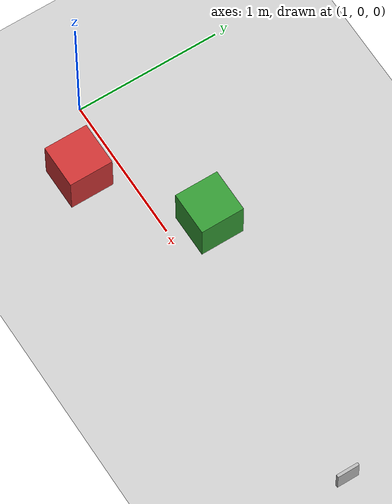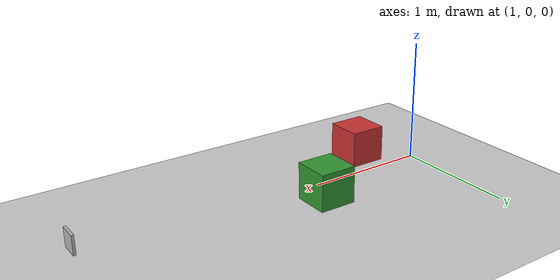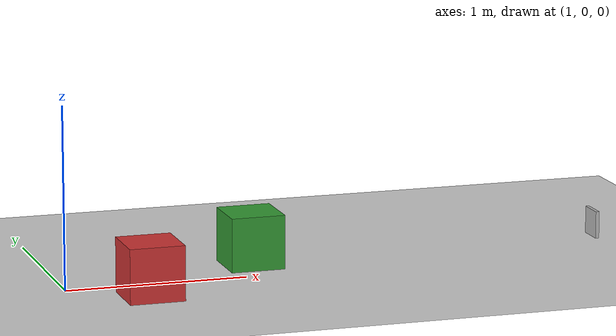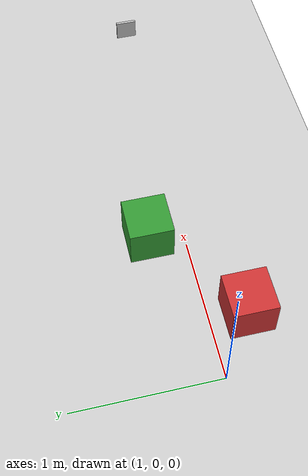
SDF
<?xml version="1.0"?>
<sdf version="1.6">
  <world name="default">

    <include><uri>model://ground_plane</uri></include>
    <include><uri>model://sun</uri></include>

    <!-- First box (red, -0.25): intrudes center-right → avoid left (+y) (staggered slalom 1) -->
    <model name="obstacle_1">
      <static>true</static>
      <pose>1.4 -0.25 0.15 0 0 0</pose>
      <link name="link">
        <collision name="c"><geometry><box><size>0.3 0.3 0.3</size></box></geometry></collision>
        <visual name="v">
          <geometry><box><size>0.3 0.3 0.3</size></box></geometry>
          <material><ambient>0.8 0.2 0.2 1</ambient><diffuse>0.8 0.2 0.2 1</diffuse></material>
        </visual>
      </link>
    </model>

    <model name="obstacle_2">
      <static>true</static>
      <pose>2.1 0.25 0.15 0 0 0</pose>
      <link name="link">
        <collision name="c"><geometry><box><size>0.3 0.3 0.3</size></box></geometry></collision>
        <visual name="v">
          <geometry><box><size>0.3 0.3 0.3</size></box></geometry>
          <material><ambient>0.2 0.6 0.2 1</ambient><diffuse>0.2 0.6 0.2 1</diffuse></material>
        </visual>
      </link>
    </model>

    <!-- Front ArUco marker (its -X face toward the car) → approach then U-turn -->
    <include>
      <name>aruco_front</name>
      <uri>model://aruco_marker</uri>
      <pose>4.0 0 0.16 0 0 0</pose>
    </include>

  </world>
</sdf>

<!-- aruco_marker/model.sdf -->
<!-- ArUco id=1 texture on a thin panel. The marker is visible on the -X face the camera sees.
     Marker real size 0.15m (matches aruco_detector.MARKER_SIZE_M -> distance estimation is correct). -->
<sdf version="1.6">
  <model name="aruco_marker">
    <static>true</static>
    <link name="link">
      <visual name="marker">
        <geometry>
          <box><size>0.02 0.15 0.15</size></box>
        </geometry>
        <material>
          <script>
            <uri>model://aruco_marker/materials/scripts</uri>
            <uri>model://aruco_marker/materials/textures</uri>
            <name>ArucoMarker/Marker1</name>
          </script>
        </material>
      </visual>
      <collision name="c">
        <geometry>
          <box><size>0.02 0.15 0.15</size></box>
        </geometry>
      </collision>
    </link>
  </model>
</sdf>
